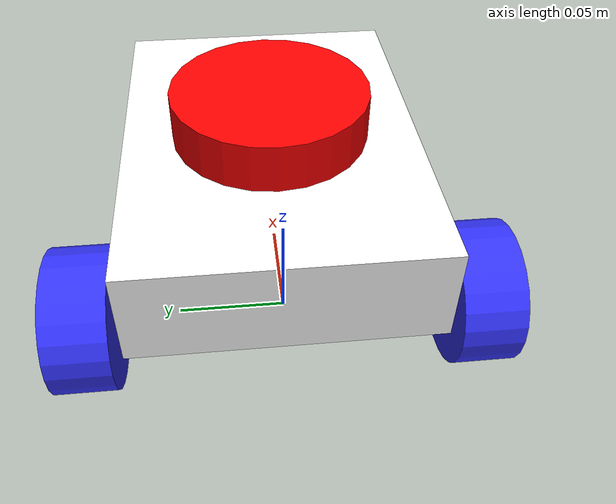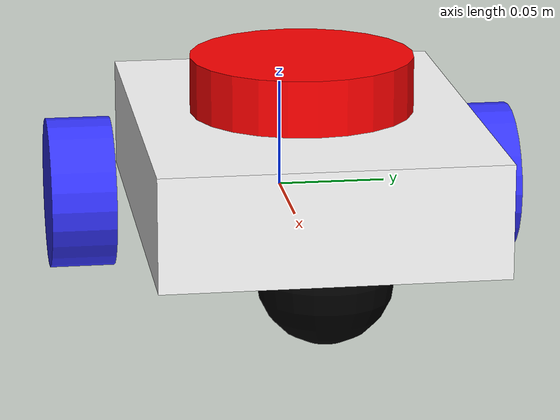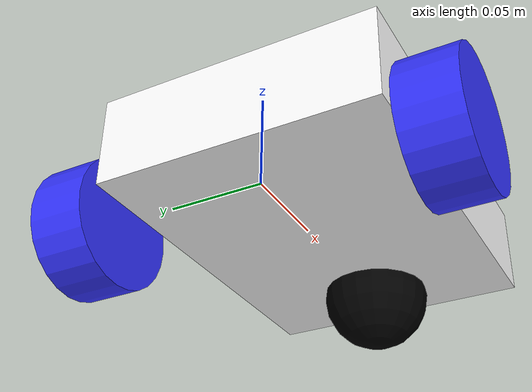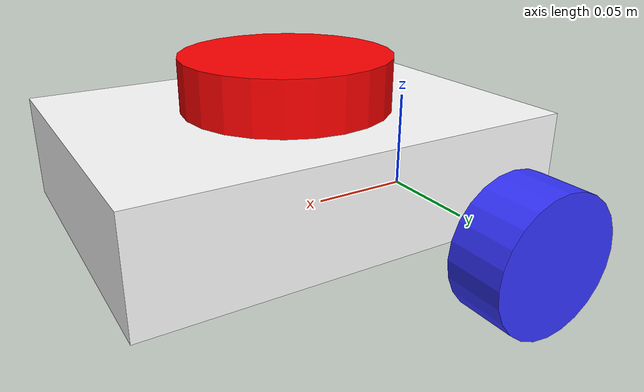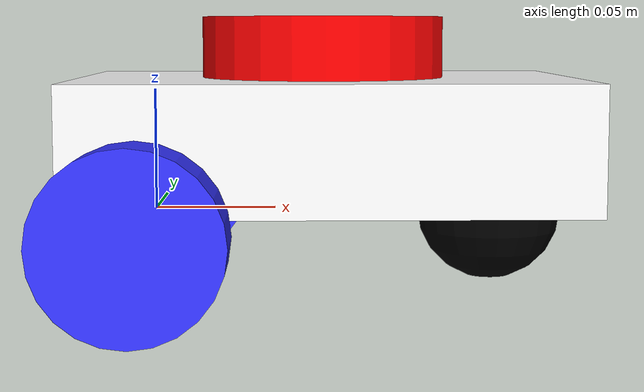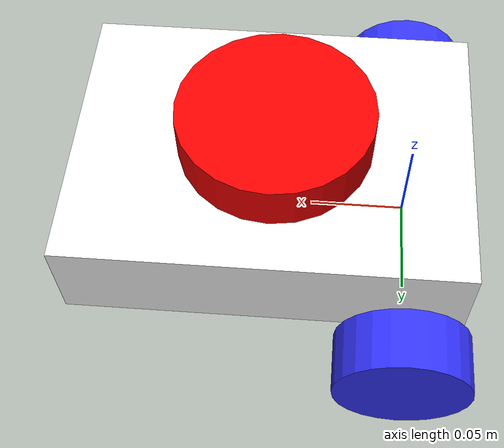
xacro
<?xml version="1.0"?>
<robot xmlns:xacro="http://www.ros.org/wiki/xacro"  name="robot">

    <!-- Example include file -->
    <xacro:include filename="gazebo_control.xacro"/>
    <xacro:include filename="robot_core.xacro"/>
    <xacro:include filename="lidar.xacro"/>

</robot>

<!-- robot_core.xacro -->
<robot xmlns:xacro="http://www.ros.org/wiki/xacro">

<xacro:include filename="inertia_macros.xacro"/>

    <material name="white">
    <color rgba="1 1 1 1"/>
    </material>

    <material name="orange">
        <color rgba="1 0.3 0.1 1"/>
    </material>

    <material name="blue">
        <color rgba="0.2 0.2 1 1"/>
    </material>

    <material name="black">
        <color rgba="0 0 0 1"/>
    </material>

    <material name="red">
        <color rgba="1 0 0 1"/>
    </material>

    <!-- base link -->

    <link name = "base_link">

    </link>

    <!-- chasis link -->

    <joint name = "chasis_joint" type = "fixed">
        <parent link="base_link"/>
        <child link="chasis"/>
        <origin xyz="-0.03 0 0"/>

    </joint>

    <link name="chasis">
        <visual>
            <origin xyz="0.1015 0 0.03" rpy="0 0 0"/>
            <geometry>
                <box size="0.203 0.15 0.05"/>
            </geometry>
            <material name="white"/>
        </visual>
        <collision>
            <origin xyz="0.1015 0 0.03" rpy="0 0 0"/>
            <geometry>
                <box size="0.203 0.15 0.05"/>
            </geometry>
        </collision>
        <xacro:inertial_box mass="0.5" x="0.203" y="0.15" z="0.05">
            <origin xyz="0.1015 0 0.03" rpy="0 0 0"/>
        </xacro:inertial_box>
    </link>
    <gazebo reference="chasis">
        <material>Gazebo/White</material>
    </gazebo>

    <!-- LEFT WHEEL -->

    <joint name="left_wheel_joint" type="continuous">
        <parent link="base_link"/>
        <child link="left_wheel"/>
        <origin xyz="0 0.095 0" rpy="-${pi/2} 0 0" />
        <axis xyz="0 0 1"/>
    </joint>

    <link name="left_wheel">
        <visual>
            <geometry>
                <cylinder length="0.03" radius="0.035" />
            </geometry>
            <material name="blue"/>
        </visual>
        <collision>
            <geometry>
                <sphere radius="0.035" />
            </geometry>
        </collision>
        <xacro:inertial_cylinder mass="0.1" length="0.03" radius="0.035">
            <origin xyz="0 0 0" rpy="0 0 0"/>
        </xacro:inertial_cylinder>
    </link>

    <gazebo reference="left_wheel">
        <material>Gazebo/Blue</material>
    </gazebo>

    <!-- RIGHT WHEEL -->

    <joint name="right_wheel_joint" type="continuous">
        <parent link="base_link"/>
        <child link="right_wheel"/>
        <origin xyz="0 -0.095 0" rpy="${pi/2} 0 0"/>
        <axis xyz="0 0 -1"/>
    </joint>

    <link name="right_wheel">
        <visual>
            <geometry>
                <cylinder length="0.03" radius="0.035" />
            </geometry>
            <material name="blue"/>
        </visual>
        <collision>
            <geometry>
                <sphere radius="0.035" />
            </geometry>
        </collision>
        <xacro:inertial_cylinder mass="0.1" length="0.03" radius="0.035">
            <origin xyz="0 0 0" rpy="0 0 0"/>
        </xacro:inertial_cylinder>
    </link>

    <gazebo reference="right_wheel">
        <material>Gazebo/Blue</material>
    </gazebo>

    <!-- CASTER WHEEL -->

    <joint name="caster_wheel_joint" type="fixed">
        <parent link="chasis"/>
        <child link="caster_wheel"/>
        <origin xyz="0.17 0 0" rpy="0 0 0"/>
    </joint>

    <link name="caster_wheel">
        <visual>
            <geometry>
                <sphere radius="0.03" />
            </geometry>
            <material name="black"/>
        </visual>
        <collision>
            <geometry>
                <sphere radius="0.03" />
            </geometry>
        </collision>
        <xacro:inertial_sphere mass="0.1" radius="0.03">
            <origin xyz="0 0 0" rpy="0 0 0"/>
        </xacro:inertial_sphere>
    </link>
    <gazebo reference="caster_wheel">
        <material>Gazebo/Black</material>
        <mu1 value="0.001"/>
        <mu2 value="0.001"/>
    </gazebo>

</robot>

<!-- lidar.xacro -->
<robot xmlns:xacro="http://www.ros.org/wiki/xacro" >

    <joint name="laser_joint" type="fixed">
        <parent link="chasis"/>
        <child link="laser_frame"/>
        <origin xyz="0.1 0 0.06" rpy="0 0 0"/>
    </joint>

    <link name="laser_frame">
        <visual>
            <geometry>
                <cylinder radius="0.05" length="0.04"/>
            </geometry>
            <material name="red"/>
        </visual>
        <collision>
            <geometry>
                <cylinder radius="0.05" length="0.04"/>
            </geometry>
        </collision>
        <xacro:inertial_cylinder mass="0.1" length="0.04" radius="0.05">
            <origin xyz="0 0 0" rpy="0 0 0"/>
        </xacro:inertial_cylinder>
    </link>

    <gazebo reference="laser_frame">
        <material>Gazebo/Red</material>

        <sensor name="laser" type="ray">
            <pose> 0 0 0 0 0 0 </pose>
            <visualize>true</visualize>
            <update_rate>10</update_rate>

            <ray>
                <scan>
                    <horizontal>
                        <samples>360</samples>
                        <min_angle>-3.14</min_angle>
                        <max_angle>3.14</max_angle>
                    </horizontal>
                </scan>
                <range>
                    <min>0.3</min>
                    <max>12</max>
                </range>
            </ray>

            <plugin name="laser_controller" filename="libgazebo_ros_ray_sensor.so">
                <ros>
                    <argument>--ros-args --remap ~/out:=scan</argument>
                </ros>
                <output_type>sensor_msgs/LaserScan</output_type>
                <frame_name>laser_frame</frame_name>
            </plugin>

        </sensor>
    </gazebo>

</robot>
